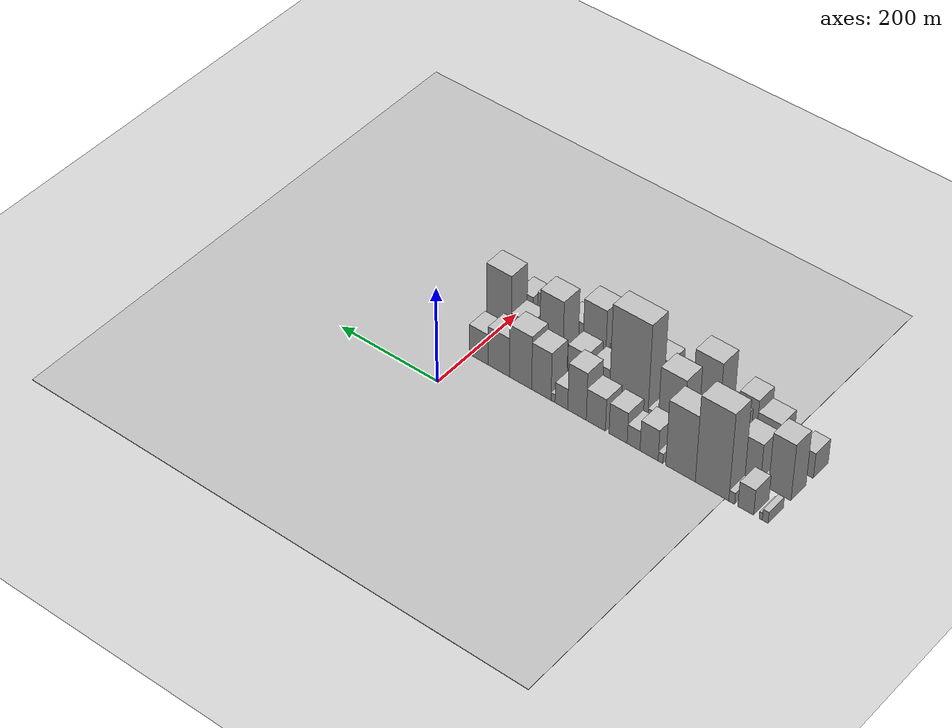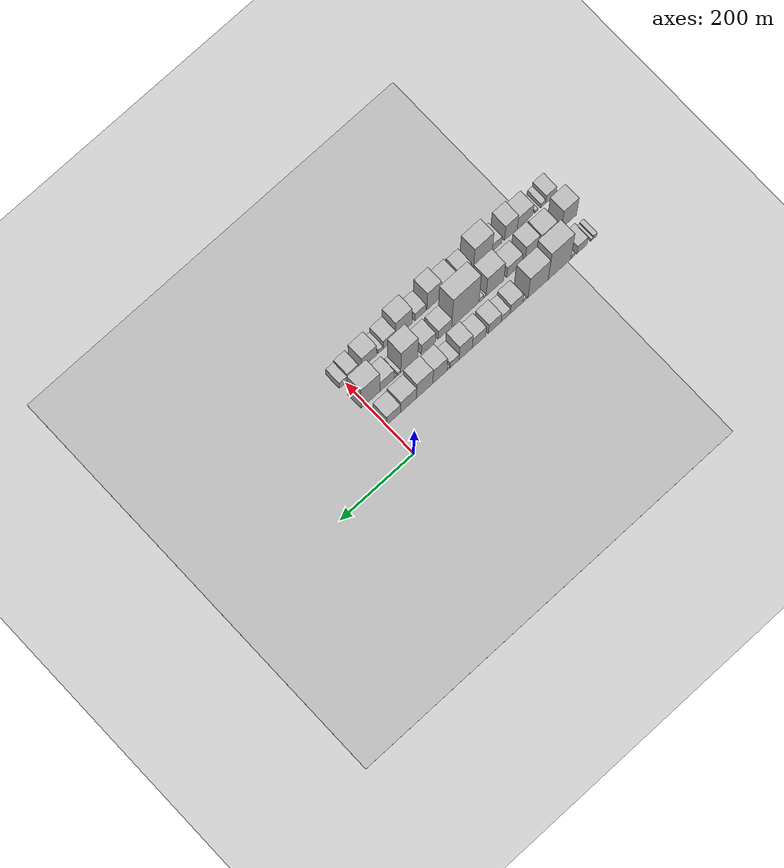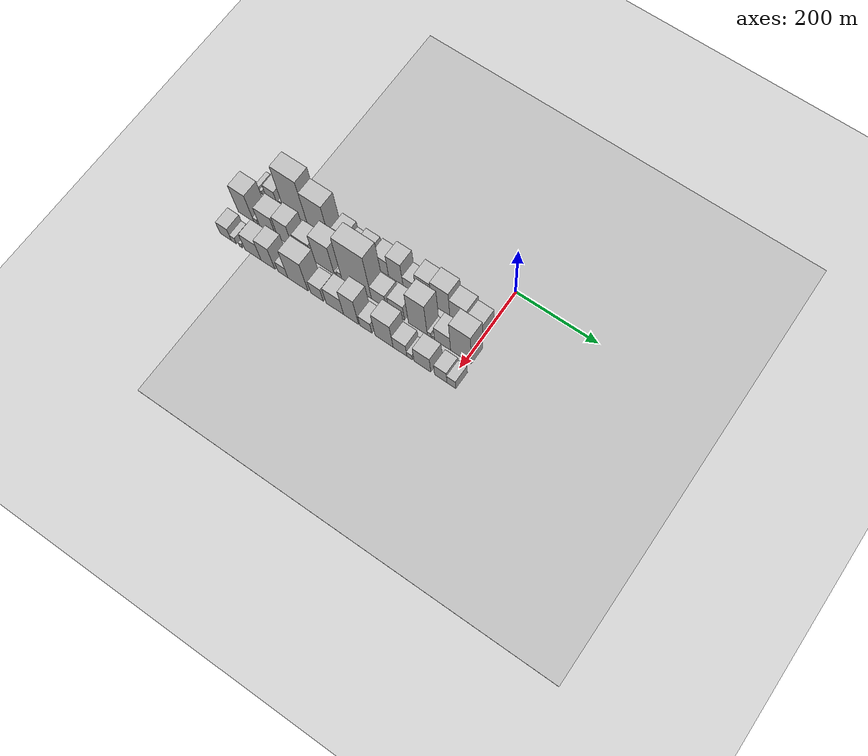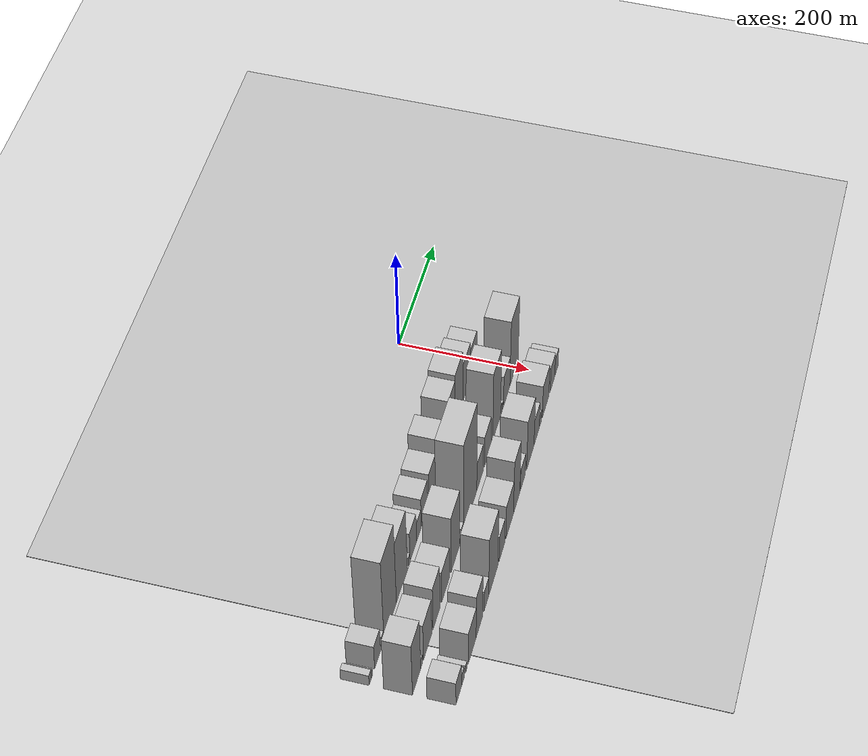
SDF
<sdf version="1.6">
 <world name="default">
  <include><name>ground_plane_1</name><uri>model://HANNAS_ground_plane</uri></include>
  <include>
   <name>ground_plane_2</name>
   <uri>model://HANNAS_ground_plane</uri>
   <pose>100 0 0  0 0 0</pose>
  </include>
  <model name="building_1">
   <static>1</static>
   <pose>100.0000 -574.6569 0 0.000000 0.000000 0.000000</pose>
   <link name="link">
    <pose>0 0 12.00 0 0 0</pose>
    <collision name="collision"><geometry><box><size>40.0000 10.6862 24.0000</size></box></geometry></collision>
    <visual name="visual">
     <cast_shadows>0</cast_shadows>
     <geometry><box><size>40.0000 10.6862 24.0000</size></box></geometry>
     <material>
      <script>
       <uri>model://HANNAS_wall/materials/scripts</uri>
       <uri>model://HANNAS_wall/materials/textures</uri>
       <name>vrc/HANNAS_wall</name>
      </script>
     </material>
    </visual>
   </link>
  </model>
  <model name="building_2">
   <static>1</static>
   <pose>100.0000 -566.2975 0 0.000000 0.000000 0.000000</pose>
   <link name="link">
    <pose>0 0 7.50 0 0 0</pose>
    <collision name="collision"><geometry><box><size>40.0000 6.0326 15.0000</size></box></geometry></collision>
    <visual name="visual">
     <cast_shadows>0</cast_shadows>
     <geometry><box><size>40.0000 6.0326 15.0000</size></box></geometry>
     <material>
      <script>
       <uri>model://HANNAS_wall/materials/scripts</uri>
       <uri>model://HANNAS_wall/materials/textures</uri>
       <name>vrc/HANNAS_wall</name>
      </script>
     </material>
    </visual>
   </link>
  </model>
  <model name="building_3">
   <static>1</static>
   <pose>100.0000 -538.7408 0 0.000000 0.000000 0.000000</pose>
   <link name="link">
    <pose>0 0 27.00 0 0 0</pose>
    <collision name="collision"><geometry><box><size>40.0000 29.0807 54.0000</size></box></geometry></collision>
    <visual name="visual">
     <cast_shadows>0</cast_shadows>
     <geometry><box><size>40.0000 29.0807 54.0000</size></box></geometry>
     <material>
      <script>
       <uri>model://HANNAS_wall/materials/scripts</uri>
       <uri>model://HANNAS_wall/materials/textures</uri>
       <name>vrc/HANNAS_wall</name>
      </script>
     </material>
    </visual>
   </link>
  </model>
  <model name="building_4">
   <static>1</static>
   <pose>100.0000 -512.7264 0 0.000000 0.000000 0.000000</pose>
   <link name="link">
    <pose>0 0 12.00 0 0 0</pose>
    <collision name="collision"><geometry><box><size>40.0000 10.9481 24.0000</size></box></geometry></collision>
    <visual name="visual">
     <cast_shadows>0</cast_shadows>
     <geometry><box><size>40.0000 10.9481 24.0000</size></box></geometry>
     <material>
      <script>
       <uri>model://HANNAS_wall/materials/scripts</uri>
       <uri>model://HANNAS_wall/materials/textures</uri>
       <name>vrc/HANNAS_wall</name>
      </script>
     </material>
    </visual>
   </link>
  </model>
  <model name="building_5">
   <static>1</static>
   <pose>100.0000 -475.8519 0 0.000000 0.000000 0.000000</pose>
   <link name="link">
    <pose>0 0 93.00 0 0 0</pose>
    <collision name="collision"><geometry><box><size>40.0000 62.8010 186.0000</size></box></geometry></collision>
    <visual name="visual">
     <cast_shadows>0</cast_shadows>
     <geometry><box><size>40.0000 62.8010 186.0000</size></box></geometry>
     <material>
      <script>
       <uri>model://HANNAS_wall/materials/scripts</uri>
       <uri>model://HANNAS_wall/materials/textures</uri>
       <name>vrc/HANNAS_wall</name>
      </script>
     </material>
    </visual>
   </link>
  </model>
  <model name="building_6">
   <static>1</static>
   <pose>100.0000 -416.3720 0 0.000000 0.000000 0.000000</pose>
   <link name="link">
    <pose>0 0 70.50 0 0 0</pose>
    <collision name="collision"><geometry><box><size>40.0000 56.1587 141.0000</size></box></geometry></collision>
    <visual name="visual">
     <cast_shadows>0</cast_shadows>
     <geometry><box><size>40.0000 56.1587 141.0000</size></box></geometry>
     <material>
      <script>
       <uri>model://HANNAS_wall/materials/scripts</uri>
       <uri>model://HANNAS_wall/materials/textures</uri>
       <name>vrc/HANNAS_wall</name>
      </script>
     </material>
    </visual>
   </link>
  </model>
  <model name="building_7">
   <static>1</static>
   <pose>100.0000 -378.6573 0 0.000000 0.000000 0.000000</pose>
   <link name="link">
    <pose>0 0 10.50 0 0 0</pose>
    <collision name="collision"><geometry><box><size>40.0000 9.2706 21.0000</size></box></geometry></collision>
    <visual name="visual">
     <cast_shadows>0</cast_shadows>
     <geometry><box><size>40.0000 9.2706 21.0000</size></box></geometry>
     <material>
      <script>
       <uri>model://HANNAS_wall/materials/scripts</uri>
       <uri>model://HANNAS_wall/materials/textures</uri>
       <name>vrc/HANNAS_wall</name>
      </script>
     </material>
    </visual>
   </link>
  </model>
  <model name="building_8">
   <static>1</static>
   <pose>100.0000 -356.5985 0 0.000000 0.000000 0.000000</pose>
   <link name="link">
    <pose>0 0 33.00 0 0 0</pose>
    <collision name="collision"><geometry><box><size>40.0000 34.8471 66.0000</size></box></geometry></collision>
    <visual name="visual">
     <cast_shadows>0</cast_shadows>
     <geometry><box><size>40.0000 34.8471 66.0000</size></box></geometry>
     <material>
      <script>
       <uri>model://HANNAS_wall/materials/scripts</uri>
       <uri>model://HANNAS_wall/materials/textures</uri>
       <name>vrc/HANNAS_wall</name>
      </script>
     </material>
    </visual>
   </link>
  </model>
  <model name="building_9">
   <static>1</static>
   <pose>100.0000 -326.7588 0 0.000000 0.000000 0.000000</pose>
   <link name="link">
    <pose>0 0 21.00 0 0 0</pose>
    <collision name="collision"><geometry><box><size>40.0000 24.8324 42.0000</size></box></geometry></collision>
    <visual name="visual">
     <cast_shadows>0</cast_shadows>
     <geometry><box><size>40.0000 24.8324 42.0000</size></box></geometry>
     <material>
      <script>
       <uri>model://HANNAS_wall/materials/scripts</uri>
       <uri>model://HANNAS_wall/materials/textures</uri>
       <name>vrc/HANNAS_wall</name>
      </script>
     </material>
    </visual>
   </link>
  </model>
  <model name="building_10">
   <static>1</static>
   <pose>100.0000 -296.7692 0 0.000000 0.000000 0.000000</pose>
   <link name="link">
    <pose>0 0 33.00 0 0 0</pose>
    <collision name="collision"><geometry><box><size>40.0000 35.1467 66.0000</size></box></geometry></collision>
    <visual name="visual">
     <cast_shadows>0</cast_shadows>
     <geometry><box><size>40.0000 35.1467 66.0000</size></box></geometry>
     <material>
      <script>
       <uri>model://HANNAS_wall/materials/scripts</uri>
       <uri>model://HANNAS_wall/materials/textures</uri>
       <name>vrc/HANNAS_wall</name>
      </script>
     </material>
    </visual>
   </link>
  </model>
  <model name="building_11">
   <static>1</static>
   <pose>100.0000 -253.4089 0 0.000000 0.000000 0.000000</pose>
   <link name="link">
    <pose>0 0 34.50 0 0 0</pose>
    <collision name="collision"><geometry><box><size>40.0000 37.5741 69.0000</size></box></geometry></collision>
    <visual name="visual">
     <cast_shadows>0</cast_shadows>
     <geometry><box><size>40.0000 37.5741 69.0000</size></box></geometry>
     <material>
      <script>
       <uri>model://HANNAS_wall/materials/scripts</uri>
       <uri>model://HANNAS_wall/materials/textures</uri>
       <name>vrc/HANNAS_wall</name>
      </script>
     </material>
    </visual>
   </link>
  </model>
  <model name="building_12">
   <static>1</static>
   <pose>100.0000 -216.4043 0 0.000000 0.000000 0.000000</pose>
   <link name="link">
    <pose>0 0 51.00 0 0 0</pose>
    <collision name="collision"><geometry><box><size>40.0000 36.4351 102.0000</size></box></geometry></collision>
    <visual name="visual">
     <cast_shadows>0</cast_shadows>
     <geometry><box><size>40.0000 36.4351 102.0000</size></box></geometry>
     <material>
      <script>
       <uri>model://HANNAS_wall/materials/scripts</uri>
       <uri>model://HANNAS_wall/materials/textures</uri>
       <name>vrc/HANNAS_wall</name>
      </script>
     </material>
    </visual>
   </link>
  </model>
  <model name="building_13">
   <static>1</static>
   <pose>100.0000 -185.5841 0 0.000000 0.000000 0.000000</pose>
   <link name="link">
    <pose>0 0 22.50 0 0 0</pose>
    <collision name="collision"><geometry><box><size>40.0000 25.2053 45.0000</size></box></geometry></collision>
    <visual name="visual">
     <cast_shadows>0</cast_shadows>
     <geometry><box><size>40.0000 25.2053 45.0000</size></box></geometry>
     <material>
      <script>
       <uri>model://HANNAS_wall/materials/scripts</uri>
       <uri>model://HANNAS_wall/materials/textures</uri>
       <name>vrc/HANNAS_wall</name>
      </script>
     </material>
    </visual>
   </link>
  </model>
  <model name="building_14">
   <static>1</static>
   <pose>100.0000 -169.0325 0 0.000000 0.000000 0.000000</pose>
   <link name="link">
    <pose>0 0 9.00 0 0 0</pose>
    <collision name="collision"><geometry><box><size>40.0000 7.8978 18.0000</size></box></geometry></collision>
    <visual name="visual">
     <cast_shadows>0</cast_shadows>
     <geometry><box><size>40.0000 7.8978 18.0000</size></box></geometry>
     <material>
      <script>
       <uri>model://HANNAS_wall/materials/scripts</uri>
       <uri>model://HANNAS_wall/materials/textures</uri>
       <name>vrc/HANNAS_wall</name>
      </script>
     </material>
    </visual>
   </link>
  </model>
  <model name="building_15">
   <static>1</static>
   <pose>100.0000 -145.6583 0 0.000000 0.000000 0.000000</pose>
   <link name="link">
    <pose>0 0 51.00 0 0 0</pose>
    <collision name="collision"><geometry><box><size>40.0000 38.8507 102.0000</size></box></geometry></collision>
    <visual name="visual">
     <cast_shadows>0</cast_shadows>
     <geometry><box><size>40.0000 38.8507 102.0000</size></box></geometry>
     <material>
      <script>
       <uri>model://HANNAS_wall/materials/scripts</uri>
       <uri>model://HANNAS_wall/materials/textures</uri>
       <name>vrc/HANNAS_wall</name>
      </script>
     </material>
    </visual>
   </link>
  </model>
  <model name="building_16">
   <static>1</static>
   <pose>100.0000 -103.8795 0 0.000000 0.000000 0.000000</pose>
   <link name="link">
    <pose>0 0 57.00 0 0 0</pose>
    <collision name="collision"><geometry><box><size>40.0000 44.7068 114.0000</size></box></geometry></collision>
    <visual name="visual">
     <cast_shadows>0</cast_shadows>
     <geometry><box><size>40.0000 44.7068 114.0000</size></box></geometry>
     <material>
      <script>
       <uri>model://HANNAS_wall/materials/scripts</uri>
       <uri>model://HANNAS_wall/materials/textures</uri>
       <name>vrc/HANNAS_wall</name>
      </script>
     </material>
    </visual>
   </link>
  </model>
  <model name="building_17">
   <static>1</static>
   <pose>100.0000 -59.8628 0 0.000000 0.000000 0.000000</pose>
   <link name="link">
    <pose>0 0 42.00 0 0 0</pose>
    <collision name="collision"><geometry><box><size>40.0000 43.3265 84.0000</size></box></geometry></collision>
    <visual name="visual">
     <cast_shadows>0</cast_shadows>
     <geometry><box><size>40.0000 43.3265 84.0000</size></box></geometry>
     <material>
      <script>
       <uri>model://HANNAS_wall/materials/scripts</uri>
       <uri>model://HANNAS_wall/materials/textures</uri>
       <name>vrc/HANNAS_wall</name>
      </script>
     </material>
    </visual>
   </link>
  </model>
  <model name="building_18">
   <static>1</static>
   <pose>100.0000 -19.0038 0 0.000000 0.000000 0.000000</pose>
   <link name="link">
    <pose>0 0 33.00 0 0 0</pose>
    <collision name="collision"><geometry><box><size>40.0000 38.3915 66.0000</size></box></geometry></collision>
    <visual name="visual">
     <cast_shadows>0</cast_shadows>
     <geometry><box><size>40.0000 38.3915 66.0000</size></box></geometry>
     <material>
      <script>
       <uri>model://HANNAS_wall/materials/scripts</uri>
       <uri>model://HANNAS_wall/materials/textures</uri>
       <name>vrc/HANNAS_wall</name>
      </script>
     </material>
    </visual>
   </link>
  </model>
  <model name="building_36">
   <static>1</static>
   <pose>160.0000 -559.1905 0 0.000000 0.000000 0.000000</pose>
   <link name="link">
    <pose>0 0 60.00 0 0 0</pose>
    <collision name="collision"><geometry><box><size>40.0000 41.6189 120.0000</size></box></geometry></collision>
    <visual name="visual">
     <cast_shadows>0</cast_shadows>
     <geometry><box><size>40.0000 41.6189 120.0000</size></box></geometry>
     <material>
      <script>
       <uri>model://HANNAS_wall/materials/scripts</uri>
       <uri>model://HANNAS_wall/materials/textures</uri>
       <name>vrc/HANNAS_wall</name>
      </script>
     </material>
    </visual>
   </link>
  </model>
  <model name="building_37">
   <static>1</static>
   <pose>160.0000 -533.4944 0 0.000000 0.000000 0.000000</pose>
   <link name="link">
    <pose>0 0 10.50 0 0 0</pose>
    <collision name="collision"><geometry><box><size>40.0000 9.7734 21.0000</size></box></geometry></collision>
    <visual name="visual">
     <cast_shadows>0</cast_shadows>
     <geometry><box><size>40.0000 9.7734 21.0000</size></box></geometry>
     <material>
      <script>
       <uri>model://HANNAS_wall/materials/scripts</uri>
       <uri>model://HANNAS_wall/materials/textures</uri>
       <name>vrc/HANNAS_wall</name>
      </script>
     </material>
    </visual>
   </link>
  </model>
  <model name="building_38">
   <static>1</static>
   <pose>160.0000 -501.9712 0 0.000000 0.000000 0.000000</pose>
   <link name="link">
    <pose>0 0 42.00 0 0 0</pose>
    <collision name="collision"><geometry><box><size>40.0000 43.2729 84.0000</size></box></geometry></collision>
    <visual name="visual">
     <cast_shadows>0</cast_shadows>
     <geometry><box><size>40.0000 43.2729 84.0000</size></box></geometry>
     <material>
      <script>
       <uri>model://HANNAS_wall/materials/scripts</uri>
       <uri>model://HANNAS_wall/materials/textures</uri>
       <name>vrc/HANNAS_wall</name>
      </script>
     </material>
    </visual>
   </link>
  </model>
  <model name="building_39">
   <static>1</static>
   <pose>160.0000 -455.4450 0 0.000000 0.000000 0.000000</pose>
   <link name="link">
    <pose>0 0 49.50 0 0 0</pose>
    <collision name="collision"><geometry><box><size>40.0000 37.7795 99.0000</size></box></geometry></collision>
    <visual name="visual">
     <cast_shadows>0</cast_shadows>
     <geometry><box><size>40.0000 37.7795 99.0000</size></box></geometry>
     <material>
      <script>
       <uri>model://HANNAS_wall/materials/scripts</uri>
       <uri>model://HANNAS_wall/materials/textures</uri>
       <name>vrc/HANNAS_wall</name>
      </script>
     </material>
    </visual>
   </link>
  </model>
  <model name="building_40">
   <static>1</static>
   <pose>160.0000 -407.1859 0 0.000000 0.000000 0.000000</pose>
   <link name="link">
    <pose>0 0 36.00 0 0 0</pose>
    <collision name="collision"><geometry><box><size>40.0000 42.7385 72.0000</size></box></geometry></collision>
    <visual name="visual">
     <cast_shadows>0</cast_shadows>
     <geometry><box><size>40.0000 42.7385 72.0000</size></box></geometry>
     <material>
      <script>
       <uri>model://HANNAS_wall/materials/scripts</uri>
       <uri>model://HANNAS_wall/materials/textures</uri>
       <name>vrc/HANNAS_wall</name>
      </script>
     </material>
    </visual>
   </link>
  </model>
  <model name="building_41">
   <static>1</static>
   <pose>160.0000 -353.3660 0 0.000000 0.000000 0.000000</pose>
   <link name="link">
    <pose>0 0 64.50 0 0 0</pose>
    <collision name="collision"><geometry><box><size>40.0000 48.9014 129.0000</size></box></geometry></collision>
    <visual name="visual">
     <cast_shadows>0</cast_shadows>
     <geometry><box><size>40.0000 48.9014 129.0000</size></box></geometry>
     <material>
      <script>
       <uri>model://HANNAS_wall/materials/scripts</uri>
       <uri>model://HANNAS_wall/materials/textures</uri>
       <name>vrc/HANNAS_wall</name>
      </script>
     </material>
    </visual>
   </link>
  </model>
  <model name="building_42">
   <static>1</static>
   <pose>160.0000 -325.3410 0 0.000000 0.000000 0.000000</pose>
   <link name="link">
    <pose>0 0 7.50 0 0 0</pose>
    <collision name="collision"><geometry><box><size>40.0000 7.1487 15.0000</size></box></geometry></collision>
    <visual name="visual">
     <cast_shadows>0</cast_shadows>
     <geometry><box><size>40.0000 7.1487 15.0000</size></box></geometry>
     <material>
      <script>
       <uri>model://HANNAS_wall/materials/scripts</uri>
       <uri>model://HANNAS_wall/materials/textures</uri>
       <name>vrc/HANNAS_wall</name>
      </script>
     </material>
    </visual>
   </link>
  </model>
  <model name="building_43">
   <static>1</static>
   <pose>160.0000 -315.4543 0 0.000000 0.000000 0.000000</pose>
   <link name="link">
    <pose>0 0 13.50 0 0 0</pose>
    <collision name="collision"><geometry><box><size>40.0000 12.6245 27.0000</size></box></geometry></collision>
    <visual name="visual">
     <cast_shadows>0</cast_shadows>
     <geometry><box><size>40.0000 12.6245 27.0000</size></box></geometry>
     <material>
      <script>
       <uri>model://HANNAS_wall/materials/scripts</uri>
       <uri>model://HANNAS_wall/materials/textures</uri>
       <name>vrc/HANNAS_wall</name>
      </script>
     </material>
    </visual>
   </link>
  </model>
  <model name="building_44">
   <static>1</static>
   <pose>160.0000 -271.6219 0 0.000000 0.000000 0.000000</pose>
   <link name="link">
    <pose>0 0 102.00 0 0 0</pose>
    <collision name="collision"><geometry><box><size>40.0000 75.0404 204.0000</size></box></geometry></collision>
    <visual name="visual">
     <cast_shadows>0</cast_shadows>
     <geometry><box><size>40.0000 75.0404 204.0000</size></box></geometry>
     <material>
      <script>
       <uri>model://HANNAS_wall/materials/scripts</uri>
       <uri>model://HANNAS_wall/materials/textures</uri>
       <name>vrc/HANNAS_wall</name>
      </script>
     </material>
    </visual>
   </link>
  </model>
  <model name="building_45">
   <static>1</static>
   <pose>160.0000 -215.3741 0 0.000000 0.000000 0.000000</pose>
   <link name="link">
    <pose>0 0 31.50 0 0 0</pose>
    <collision name="collision"><geometry><box><size>40.0000 37.4552 63.0000</size></box></geometry></collision>
    <visual name="visual">
     <cast_shadows>0</cast_shadows>
     <geometry><box><size>40.0000 37.4552 63.0000</size></box></geometry>
     <material>
      <script>
       <uri>model://HANNAS_wall/materials/scripts</uri>
       <uri>model://HANNAS_wall/materials/textures</uri>
       <name>vrc/HANNAS_wall</name>
      </script>
     </material>
    </visual>
   </link>
  </model>
  <model name="building_46">
   <static>1</static>
   <pose>160.0000 -170.3409 0 0.000000 0.000000 0.000000</pose>
   <link name="link">
    <pose>0 0 34.50 0 0 0</pose>
    <collision name="collision"><geometry><box><size>40.0000 38.6111 69.0000</size></box></geometry></collision>
    <visual name="visual">
     <cast_shadows>0</cast_shadows>
     <geometry><box><size>40.0000 38.6111 69.0000</size></box></geometry>
     <material>
      <script>
       <uri>model://HANNAS_wall/materials/scripts</uri>
       <uri>model://HANNAS_wall/materials/textures</uri>
       <name>vrc/HANNAS_wall</name>
      </script>
     </material>
    </visual>
   </link>
  </model>
  <model name="building_47">
   <static>1</static>
   <pose>160.0000 -117.7269 0 0.000000 0.000000 0.000000</pose>
   <link name="link">
    <pose>0 0 76.50 0 0 0</pose>
    <collision name="collision"><geometry><box><size>40.0000 46.6169 153.0000</size></box></geometry></collision>
    <visual name="visual">
     <cast_shadows>0</cast_shadows>
     <geometry><box><size>40.0000 46.6169 153.0000</size></box></geometry>
     <material>
      <script>
       <uri>model://HANNAS_wall/materials/scripts</uri>
       <uri>model://HANNAS_wall/materials/textures</uri>
       <name>vrc/HANNAS_wall</name>
      </script>
     </material>
    </visual>
   </link>
  </model>
  <model name="building_48">
   <static>1</static>
   <pose>160.0000 -90.1099 0 0.000000 0.000000 0.000000</pose>
   <link name="link">
    <pose>0 0 10.50 0 0 0</pose>
    <collision name="collision"><geometry><box><size>40.0000 8.6172 21.0000</size></box></geometry></collision>
    <visual name="visual">
     <cast_shadows>0</cast_shadows>
     <geometry><box><size>40.0000 8.6172 21.0000</size></box></geometry>
     <material>
      <script>
       <uri>model://HANNAS_wall/materials/scripts</uri>
       <uri>model://HANNAS_wall/materials/textures</uri>
       <name>vrc/HANNAS_wall</name>
      </script>
     </material>
    </visual>
   </link>
  </model>
  <model name="building_49">
   <static>1</static>
   <pose>160.0000 -79.6990 0 0.000000 0.000000 0.000000</pose>
   <link name="link">
    <pose>0 0 7.50 0 0 0</pose>
    <collision name="collision"><geometry><box><size>40.0000 6.2045 15.0000</size></box></geometry></collision>
    <visual name="visual">
     <cast_shadows>0</cast_shadows>
     <geometry><box><size>40.0000 6.2045 15.0000</size></box></geometry>
     <material>
      <script>
       <uri>model://HANNAS_wall/materials/scripts</uri>
       <uri>model://HANNAS_wall/materials/textures</uri>
       <name>vrc/HANNAS_wall</name>
      </script>
     </material>
    </visual>
   </link>
  </model>
  <model name="building_50">
   <static>1</static>
   <pose>160.0000 -56.8756 0 0.000000 0.000000 0.000000</pose>
   <link name="link">
    <pose>0 0 34.50 0 0 0</pose>
    <collision name="collision"><geometry><box><size>40.0000 39.4425 69.0000</size></box></geometry></collision>
    <visual name="visual">
     <cast_shadows>0</cast_shadows>
     <geometry><box><size>40.0000 39.4425 69.0000</size></box></geometry>
     <material>
      <script>
       <uri>model://HANNAS_wall/materials/scripts</uri>
       <uri>model://HANNAS_wall/materials/textures</uri>
       <name>vrc/HANNAS_wall</name>
      </script>
     </material>
    </visual>
   </link>
  </model>
  <model name="building_51">
   <static>1</static>
   <pose>160.0000 -11.6817 0 0.000000 0.000000 0.000000</pose>
   <link name="link">
    <pose>0 0 73.50 0 0 0</pose>
    <collision name="collision"><geometry><box><size>40.0000 50.9453 147.0000</size></box></geometry></collision>
    <visual name="visual">
     <cast_shadows>0</cast_shadows>
     <geometry><box><size>40.0000 50.9453 147.0000</size></box></geometry>
     <material>
      <script>
       <uri>model://HANNAS_wall/materials/scripts</uri>
       <uri>model://HANNAS_wall/materials/textures</uri>
       <name>vrc/HANNAS_wall</name>
      </script>
     </material>
    </visual>
   </link>
  </model>
  <model name="building_72">
   <static>1</static>
   <pose>220.0000 -565.2903 0 0.000000 0.000000 0.000000</pose>
   <link name="link">
    <pose>0 0 27.00 0 0 0</pose>
    <collision name="collision"><geometry><box><size>40.0000 29.4194 54.0000</size></box></geometry></collision>
    <visual name="visual">
     <cast_shadows>0</cast_shadows>
     <geometry><box><size>40.0000 29.4194 54.0000</size></box></geometry>
     <material>
      <script>
       <uri>model://HANNAS_wall/materials/scripts</uri>
       <uri>model://HANNAS_wall/materials/textures</uri>
       <name>vrc/HANNAS_wall</name>
      </script>
     </material>
    </visual>
   </link>
  </model>
  <model name="building_73">
   <static>1</static>
   <pose>220.0000 -543.8800 0 0.000000 0.000000 0.000000</pose>
   <link name="link">
    <pose>0 0 13.50 0 0 0</pose>
    <collision name="collision"><geometry><box><size>40.0000 13.4012 27.0000</size></box></geometry></collision>
    <visual name="visual">
     <cast_shadows>0</cast_shadows>
     <geometry><box><size>40.0000 13.4012 27.0000</size></box></geometry>
     <material>
      <script>
       <uri>model://HANNAS_wall/materials/scripts</uri>
       <uri>model://HANNAS_wall/materials/textures</uri>
       <name>vrc/HANNAS_wall</name>
      </script>
     </material>
    </visual>
   </link>
  </model>
  <model name="building_74">
   <static>1</static>
   <pose>220.0000 -525.1029 0 0.000000 0.000000 0.000000</pose>
   <link name="link">
    <pose>0 0 9.00 0 0 0</pose>
    <collision name="collision"><geometry><box><size>40.0000 8.1531 18.0000</size></box></geometry></collision>
    <visual name="visual">
     <cast_shadows>0</cast_shadows>
     <geometry><box><size>40.0000 8.1531 18.0000</size></box></geometry>
     <material>
      <script>
       <uri>model://HANNAS_wall/materials/scripts</uri>
       <uri>model://HANNAS_wall/materials/textures</uri>
       <name>vrc/HANNAS_wall</name>
      </script>
     </material>
    </visual>
   </link>
  </model>
  <model name="building_75">
   <static>1</static>
   <pose>220.0000 -493.5593 0 0.000000 0.000000 0.000000</pose>
   <link name="link">
    <pose>0 0 37.50 0 0 0</pose>
    <collision name="collision"><geometry><box><size>40.0000 42.9341 75.0000</size></box></geometry></collision>
    <visual name="visual">
     <cast_shadows>0</cast_shadows>
     <geometry><box><size>40.0000 42.9341 75.0000</size></box></geometry>
     <material>
      <script>
       <uri>model://HANNAS_wall/materials/scripts</uri>
       <uri>model://HANNAS_wall/materials/textures</uri>
       <name>vrc/HANNAS_wall</name>
      </script>
     </material>
    </visual>
   </link>
  </model>
  <model name="building_76">
   <static>1</static>
   <pose>220.0000 -454.1300 0 0.000000 0.000000 0.000000</pose>
   <link name="link">
    <pose>0 0 49.50 0 0 0</pose>
    <collision name="collision"><geometry><box><size>40.0000 35.9245 99.0000</size></box></geometry></collision>
    <visual name="visual">
     <cast_shadows>0</cast_shadows>
     <geometry><box><size>40.0000 35.9245 99.0000</size></box></geometry>
     <material>
      <script>
       <uri>model://HANNAS_wall/materials/scripts</uri>
       <uri>model://HANNAS_wall/materials/textures</uri>
       <name>vrc/HANNAS_wall</name>
      </script>
     </material>
    </visual>
   </link>
  </model>
  <model name="building_77">
   <static>1</static>
   <pose>220.0000 -415.3616 0 0.000000 0.000000 0.000000</pose>
   <link name="link">
    <pose>0 0 24.00 0 0 0</pose>
    <collision name="collision"><geometry><box><size>40.0000 25.6124 48.0000</size></box></geometry></collision>
    <visual name="visual">
     <cast_shadows>0</cast_shadows>
     <geometry><box><size>40.0000 25.6124 48.0000</size></box></geometry>
     <material>
      <script>
       <uri>model://HANNAS_wall/materials/scripts</uri>
       <uri>model://HANNAS_wall/materials/textures</uri>
       <name>vrc/HANNAS_wall</name>
      </script>
     </material>
    </visual>
   </link>
  </model>
  <model name="building_78">
   <static>1</static>
   <pose>220.0000 -376.4548 0 0.000000 0.000000 0.000000</pose>
   <link name="link">
    <pose>0 0 67.50 0 0 0</pose>
    <collision name="collision"><geometry><box><size>40.0000 52.2012 135.0000</size></box></geometry></collision>
    <visual name="visual">
     <cast_shadows>0</cast_shadows>
     <geometry><box><size>40.0000 52.2012 135.0000</size></box></geometry>
     <material>
      <script>
       <uri>model://HANNAS_wall/materials/scripts</uri>
       <uri>model://HANNAS_wall/materials/textures</uri>
       <name>vrc/HANNAS_wall</name>
      </script>
     </material>
    </visual>
   </link>
  </model>
  <model name="building_79">
   <static>1</static>
   <pose>220.0000 -327.3299 0 0.000000 0.000000 0.000000</pose>
   <link name="link">
    <pose>0 0 30.00 0 0 0</pose>
    <collision name="collision"><geometry><box><size>40.0000 32.0486 60.0000</size></box></geometry></collision>
    <visual name="visual">
     <cast_shadows>0</cast_shadows>
     <geometry><box><size>40.0000 32.0486 60.0000</size></box></geometry>
     <material>
      <script>
       <uri>model://HANNAS_wall/materials/scripts</uri>
       <uri>model://HANNAS_wall/materials/textures</uri>
       <name>vrc/HANNAS_wall</name>
      </script>
     </material>
    </visual>
   </link>
  </model>
  <model name="building_80">
   <static>1</static>
   <pose>220.0000 -282.1544 0 0.000000 0.000000 0.000000</pose>
   <link name="link">
    <pose>0 0 39.00 0 0 0</pose>
    <collision name="collision"><geometry><box><size>40.0000 44.3023 78.0000</size></box></geometry></collision>
    <visual name="visual">
     <cast_shadows>0</cast_shadows>
     <geometry><box><size>40.0000 44.3023 78.0000</size></box></geometry>
     <material>
      <script>
       <uri>model://HANNAS_wall/materials/scripts</uri>
       <uri>model://HANNAS_wall/materials/textures</uri>
       <name>vrc/HANNAS_wall</name>
      </script>
     </material>
    </visual>
   </link>
  </model>
  <model name="building_81">
   <static>1</static>
   <pose>220.0000 -240.9846 0 0.000000 0.000000 0.000000</pose>
   <link name="link">
    <pose>0 0 61.50 0 0 0</pose>
    <collision name="collision"><geometry><box><size>40.0000 38.0372 123.0000</size></box></geometry></collision>
    <visual name="visual">
     <cast_shadows>0</cast_shadows>
     <geometry><box><size>40.0000 38.0372 123.0000</size></box></geometry>
     <material>
      <script>
       <uri>model://HANNAS_wall/materials/scripts</uri>
       <uri>model://HANNAS_wall/materials/textures</uri>
       <name>vrc/HANNAS_wall</name>
      </script>
     </material>
    </visual>
   </link>
  </model>
  <model name="building_82">
   <static>1</static>
   <pose>220.0000 -203.9483 0 0.000000 0.000000 0.000000</pose>
   <link name="link">
    <pose>0 0 25.50 0 0 0</pose>
    <collision name="collision"><geometry><box><size>40.0000 30.0355 51.0000</size></box></geometry></collision>
    <visual name="visual">
     <cast_shadows>0</cast_shadows>
     <geometry><box><size>40.0000 30.0355 51.0000</size></box></geometry>
     <material>
      <script>
       <uri>model://HANNAS_wall/materials/scripts</uri>
       <uri>model://HANNAS_wall/materials/textures</uri>
       <name>vrc/HANNAS_wall</name>
      </script>
     </material>
    </visual>
   </link>
  </model>
  <model name="building_83">
   <static>1</static>
   <pose>220.0000 -158.3374 0 0.000000 0.000000 0.000000</pose>
   <link name="link">
    <pose>0 0 57.00 0 0 0</pose>
    <collision name="collision"><geometry><box><size>40.0000 45.1863 114.0000</size></box></geometry></collision>
    <visual name="visual">
     <cast_shadows>0</cast_shadows>
     <geometry><box><size>40.0000 45.1863 114.0000</size></box></geometry>
     <material>
      <script>
       <uri>model://HANNAS_wall/materials/scripts</uri>
       <uri>model://HANNAS_wall/materials/textures</uri>
       <name>vrc/HANNAS_wall</name>
      </script>
     </material>
    </visual>
   </link>
  </model>
  <model name="building_84">
   <static>1</static>
   <pose>220.0000 -118.6782 0 0.000000 0.000000 0.000000</pose>
   <link name="link">
    <pose>0 0 30.00 0 0 0</pose>
    <collision name="collision"><geometry><box><size>40.0000 34.1321 60.0000</size></box></geometry></collision>
    <visual name="visual">
     <cast_shadows>0</cast_shadows>
     <geometry><box><size>40.0000 34.1321 60.0000</size></box></geometry>
     <material>
      <script>
       <uri>model://HANNAS_wall/materials/scripts</uri>
       <uri>model://HANNAS_wall/materials/textures</uri>
       <name>vrc/HANNAS_wall</name>
      </script>
     </material>
    </visual>
   </link>
  </model>
  <model name="building_85">
   <static>1</static>
   <pose>220.0000 -94.8639 0 0.000000 0.000000 0.000000</pose>
   <link name="link">
    <pose>0 0 13.50 0 0 0</pose>
    <collision name="collision"><geometry><box><size>40.0000 13.4965 27.0000</size></box></geometry></collision>
    <visual name="visual">
     <cast_shadows>0</cast_shadows>
     <geometry><box><size>40.0000 13.4965 27.0000</size></box></geometry>
     <material>
      <script>
       <uri>model://HANNAS_wall/materials/scripts</uri>
       <uri>model://HANNAS_wall/materials/textures</uri>
       <name>vrc/HANNAS_wall</name>
      </script>
     </material>
    </visual>
   </link>
  </model>
  <model name="building_86">
   <static>1</static>
   <pose>220.0000 -63.5806 0 0.000000 0.000000 0.000000</pose>
   <link name="link">
    <pose>0 0 37.50 0 0 0</pose>
    <collision name="collision"><geometry><box><size>40.0000 41.0700 75.0000</size></box></geometry></collision>
    <visual name="visual">
     <cast_shadows>0</cast_shadows>
     <geometry><box><size>40.0000 41.0700 75.0000</size></box></geometry>
     <material>
      <script>
       <uri>model://HANNAS_wall/materials/scripts</uri>
       <uri>model://HANNAS_wall/materials/textures</uri>
       <name>vrc/HANNAS_wall</name>
      </script>
     </material>
    </visual>
   </link>
  </model>
  <model name="building_87">
   <static>1</static>
   <pose>220.0000 -18.8606 0 0.000000 0.000000 0.000000</pose>
   <link name="link">
    <pose>0 0 28.50 0 0 0</pose>
    <collision name="collision"><geometry><box><size>40.0000 30.3701 57.0000</size></box></geometry></collision>
    <visual name="visual">
     <cast_shadows>0</cast_shadows>
     <geometry><box><size>40.0000 30.3701 57.0000</size></box></geometry>
     <material>
      <script>
       <uri>model://HANNAS_wall/materials/scripts</uri>
       <uri>model://HANNAS_wall/materials/textures</uri>
       <name>vrc/HANNAS_wall</name>
      </script>
     </material>
    </visual>
   </link>
  </model>
  <model name="building_88">
   <static>1</static>
   <pose>220.0000 7.1145 0 0.000000 0.000000 0.000000</pose>
   <link name="link">
    <pose>0 0 21.00 0 0 0</pose>
    <collision name="collision"><geometry><box><size>40.0000 21.5802 42.0000</size></box></geometry></collision>
    <visual name="visual">
     <cast_shadows>0</cast_shadows>
     <geometry><box><size>40.0000 21.5802 42.0000</size></box></geometry>
     <material>
      <script>
       <uri>model://HANNAS_wall/materials/scripts</uri>
       <uri>model://HANNAS_wall/materials/textures</uri>
       <name>vrc/HANNAS_wall</name>
      </script>
     </material>
    </visual>
   </link>
  </model>
 </world>
</sdf>
